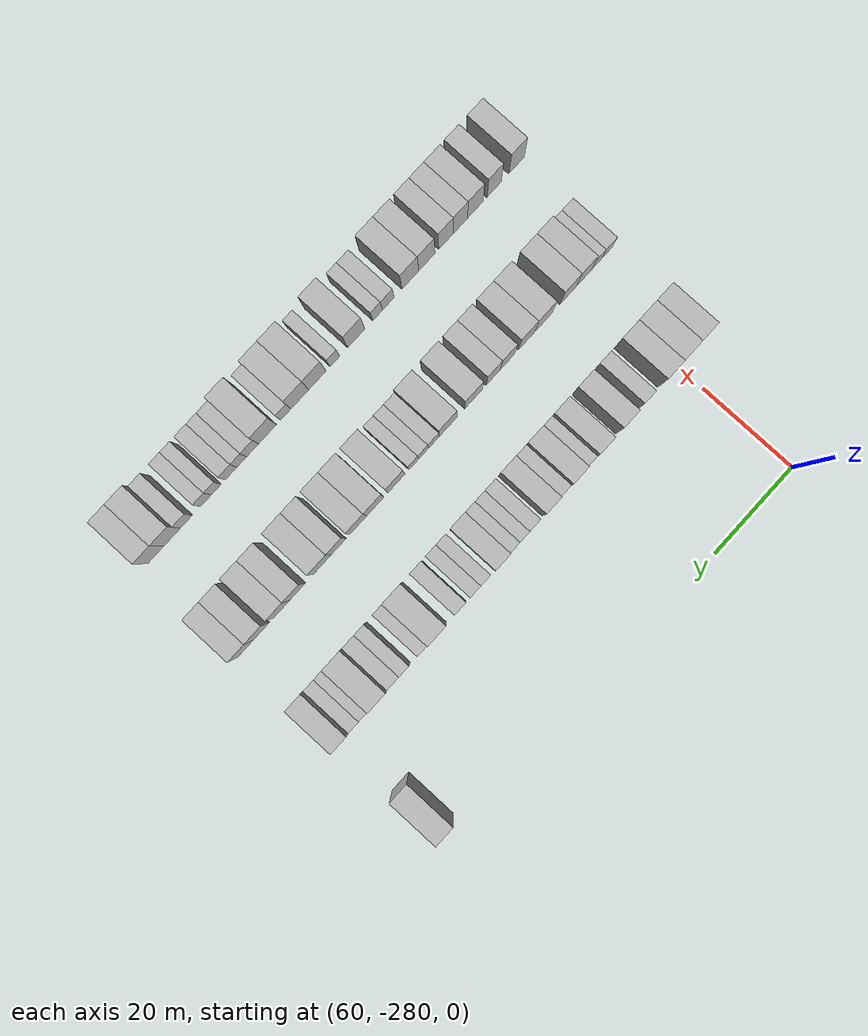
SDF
<sdf version="1.6">
 <world name="default">
  <model name="building_430">
   <static>1</static>
   <pose>69.0000 -196.3556 0 0.000000 0.000000 0.000000</pose>
   <link name="link">
    <pose>0 0 4.50 0 0 0</pose>
    <collision name="collision"><geometry><box><size>10.0000 4.1145 9.0000</size></box></geometry></collision>
    <visual name="visual">
     <cast_shadows>0</cast_shadows>
     <geometry><box><size>10.0000 4.1145 9.0000</size></box></geometry>
     <material>
      <script>
       <uri>model://HANNAS_wall/materials/scripts</uri>
       <uri>model://HANNAS_wall/materials/textures</uri>
       <name>vrc/HANNAS_wall</name>
      </script>
     </material>
    </visual>
   </link>
  </model>
  <model name="building_592">
   <static>1</static>
   <pose>91.0000 -285.4383 0 0.000000 0.000000 0.000000</pose>
   <link name="link">
    <pose>0 0 4.50 0 0 0</pose>
    <collision name="collision"><geometry><box><size>10.0000 4.0246 9.0000</size></box></geometry></collision>
    <visual name="visual">
     <cast_shadows>0</cast_shadows>
     <geometry><box><size>10.0000 4.0246 9.0000</size></box></geometry>
     <material>
      <script>
       <uri>model://HANNAS_wall/materials/scripts</uri>
       <uri>model://HANNAS_wall/materials/textures</uri>
       <name>vrc/HANNAS_wall</name>
      </script>
     </material>
    </visual>
   </link>
  </model>
  <model name="building_593">
   <static>1</static>
   <pose>91.0000 -281.2193 0 0.000000 0.000000 0.000000</pose>
   <link name="link">
    <pose>0 0 4.50 0 0 0</pose>
    <collision name="collision"><geometry><box><size>10.0000 4.4134 9.0000</size></box></geometry></collision>
    <visual name="visual">
     <cast_shadows>0</cast_shadows>
     <geometry><box><size>10.0000 4.4134 9.0000</size></box></geometry>
     <material>
      <script>
       <uri>model://HANNAS_wall/materials/scripts</uri>
       <uri>model://HANNAS_wall/materials/textures</uri>
       <name>vrc/HANNAS_wall</name>
      </script>
     </material>
    </visual>
   </link>
  </model>
  <model name="building_594">
   <static>1</static>
   <pose>91.0000 -276.9305 0 0.000000 0.000000 0.000000</pose>
   <link name="link">
    <pose>0 0 4.50 0 0 0</pose>
    <collision name="collision"><geometry><box><size>10.0000 4.1642 9.0000</size></box></geometry></collision>
    <visual name="visual">
     <cast_shadows>0</cast_shadows>
     <geometry><box><size>10.0000 4.1642 9.0000</size></box></geometry>
     <material>
      <script>
       <uri>model://HANNAS_wall/materials/scripts</uri>
       <uri>model://HANNAS_wall/materials/textures</uri>
       <name>vrc/HANNAS_wall</name>
      </script>
     </material>
    </visual>
   </link>
  </model>
  <model name="building_595">
   <static>1</static>
   <pose>91.0000 -271.4006 0 0.000000 0.000000 0.000000</pose>
   <link name="link">
    <pose>0 0 3.00 0 0 0</pose>
    <collision name="collision"><geometry><box><size>10.0000 2.8958 6.0000</size></box></geometry></collision>
    <visual name="visual">
     <cast_shadows>0</cast_shadows>
     <geometry><box><size>10.0000 2.8958 6.0000</size></box></geometry>
     <material>
      <script>
       <uri>model://HANNAS_wall/materials/scripts</uri>
       <uri>model://HANNAS_wall/materials/textures</uri>
       <name>vrc/HANNAS_wall</name>
      </script>
     </material>
    </visual>
   </link>
  </model>
  <model name="building_596">
   <static>1</static>
   <pose>91.0000 -265.9723 0 0.000000 0.000000 0.000000</pose>
   <link name="link">
    <pose>0 0 4.50 0 0 0</pose>
    <collision name="collision"><geometry><box><size>10.0000 3.9608 9.0000</size></box></geometry></collision>
    <visual name="visual">
     <cast_shadows>0</cast_shadows>
     <geometry><box><size>10.0000 3.9608 9.0000</size></box></geometry>
     <material>
      <script>
       <uri>model://HANNAS_wall/materials/scripts</uri>
       <uri>model://HANNAS_wall/materials/textures</uri>
       <name>vrc/HANNAS_wall</name>
      </script>
     </material>
    </visual>
   </link>
  </model>
  <model name="building_597">
   <static>1</static>
   <pose>91.0000 -260.0724 0 0.000000 0.000000 0.000000</pose>
   <link name="link">
    <pose>0 0 4.50 0 0 0</pose>
    <collision name="collision"><geometry><box><size>10.0000 3.8388 9.0000</size></box></geometry></collision>
    <visual name="visual">
     <cast_shadows>0</cast_shadows>
     <geometry><box><size>10.0000 3.8388 9.0000</size></box></geometry>
     <material>
      <script>
       <uri>model://HANNAS_wall/materials/scripts</uri>
       <uri>model://HANNAS_wall/materials/textures</uri>
       <name>vrc/HANNAS_wall</name>
      </script>
     </material>
    </visual>
   </link>
  </model>
  <model name="building_598">
   <static>1</static>
   <pose>91.0000 -256.8457 0 0.000000 0.000000 0.000000</pose>
   <link name="link">
    <pose>0 0 3.00 0 0 0</pose>
    <collision name="collision"><geometry><box><size>10.0000 2.6148 6.0000</size></box></geometry></collision>
    <visual name="visual">
     <cast_shadows>0</cast_shadows>
     <geometry><box><size>10.0000 2.6148 6.0000</size></box></geometry>
     <material>
      <script>
       <uri>model://HANNAS_wall/materials/scripts</uri>
       <uri>model://HANNAS_wall/materials/textures</uri>
       <name>vrc/HANNAS_wall</name>
      </script>
     </material>
    </visual>
   </link>
  </model>
  <model name="building_599">
   <static>1</static>
   <pose>91.0000 -253.6108 0 0.000000 0.000000 0.000000</pose>
   <link name="link">
    <pose>0 0 4.50 0 0 0</pose>
    <collision name="collision"><geometry><box><size>10.0000 3.8549 9.0000</size></box></geometry></collision>
    <visual name="visual">
     <cast_shadows>0</cast_shadows>
     <geometry><box><size>10.0000 3.8549 9.0000</size></box></geometry>
     <material>
      <script>
       <uri>model://HANNAS_wall/materials/scripts</uri>
       <uri>model://HANNAS_wall/materials/textures</uri>
       <name>vrc/HANNAS_wall</name>
      </script>
     </material>
    </visual>
   </link>
  </model>
  <model name="building_600">
   <static>1</static>
   <pose>91.0000 -250.2678 0 0.000000 0.000000 0.000000</pose>
   <link name="link">
    <pose>0 0 3.00 0 0 0</pose>
    <collision name="collision"><geometry><box><size>10.0000 2.8312 6.0000</size></box></geometry></collision>
    <visual name="visual">
     <cast_shadows>0</cast_shadows>
     <geometry><box><size>10.0000 2.8312 6.0000</size></box></geometry>
     <material>
      <script>
       <uri>model://HANNAS_wall/materials/scripts</uri>
       <uri>model://HANNAS_wall/materials/textures</uri>
       <name>vrc/HANNAS_wall</name>
      </script>
     </material>
    </visual>
   </link>
  </model>
  <model name="building_601">
   <static>1</static>
   <pose>91.0000 -246.9800 0 0.000000 0.000000 0.000000</pose>
   <link name="link">
    <pose>0 0 4.50 0 0 0</pose>
    <collision name="collision"><geometry><box><size>10.0000 3.7443 9.0000</size></box></geometry></collision>
    <visual name="visual">
     <cast_shadows>0</cast_shadows>
     <geometry><box><size>10.0000 3.7443 9.0000</size></box></geometry>
     <material>
      <script>
       <uri>model://HANNAS_wall/materials/scripts</uri>
       <uri>model://HANNAS_wall/materials/textures</uri>
       <name>vrc/HANNAS_wall</name>
      </script>
     </material>
    </visual>
   </link>
  </model>
  <model name="building_602">
   <static>1</static>
   <pose>91.0000 -242.7519 0 0.000000 0.000000 0.000000</pose>
   <link name="link">
    <pose>0 0 3.00 0 0 0</pose>
    <collision name="collision"><geometry><box><size>10.0000 2.7119 6.0000</size></box></geometry></collision>
    <visual name="visual">
     <cast_shadows>0</cast_shadows>
     <geometry><box><size>10.0000 2.7119 6.0000</size></box></geometry>
     <material>
      <script>
       <uri>model://HANNAS_wall/materials/scripts</uri>
       <uri>model://HANNAS_wall/materials/textures</uri>
       <name>vrc/HANNAS_wall</name>
      </script>
     </material>
    </visual>
   </link>
  </model>
  <model name="building_603">
   <static>1</static>
   <pose>91.0000 -240.1879 0 0.000000 0.000000 0.000000</pose>
   <link name="link">
    <pose>0 0 3.00 0 0 0</pose>
    <collision name="collision"><geometry><box><size>10.0000 2.4161 6.0000</size></box></geometry></collision>
    <visual name="visual">
     <cast_shadows>0</cast_shadows>
     <geometry><box><size>10.0000 2.4161 6.0000</size></box></geometry>
     <material>
      <script>
       <uri>model://HANNAS_wall/materials/scripts</uri>
       <uri>model://HANNAS_wall/materials/textures</uri>
       <name>vrc/HANNAS_wall</name>
      </script>
     </material>
    </visual>
   </link>
  </model>
  <model name="building_604">
   <static>1</static>
   <pose>91.0000 -237.7492 0 0.000000 0.000000 0.000000</pose>
   <link name="link">
    <pose>0 0 3.00 0 0 0</pose>
    <collision name="collision"><geometry><box><size>10.0000 2.4612 6.0000</size></box></geometry></collision>
    <visual name="visual">
     <cast_shadows>0</cast_shadows>
     <geometry><box><size>10.0000 2.4612 6.0000</size></box></geometry>
     <material>
      <script>
       <uri>model://HANNAS_wall/materials/scripts</uri>
       <uri>model://HANNAS_wall/materials/textures</uri>
       <name>vrc/HANNAS_wall</name>
      </script>
     </material>
    </visual>
   </link>
  </model>
  <model name="building_605">
   <static>1</static>
   <pose>91.0000 -234.6659 0 0.000000 0.000000 0.000000</pose>
   <link name="link">
    <pose>0 0 4.50 0 0 0</pose>
    <collision name="collision"><geometry><box><size>10.0000 3.7055 9.0000</size></box></geometry></collision>
    <visual name="visual">
     <cast_shadows>0</cast_shadows>
     <geometry><box><size>10.0000 3.7055 9.0000</size></box></geometry>
     <material>
      <script>
       <uri>model://HANNAS_wall/materials/scripts</uri>
       <uri>model://HANNAS_wall/materials/textures</uri>
       <name>vrc/HANNAS_wall</name>
      </script>
     </material>
    </visual>
   </link>
  </model>
  <model name="building_606">
   <static>1</static>
   <pose>91.0000 -230.6035 0 0.000000 0.000000 0.000000</pose>
   <link name="link">
    <pose>0 0 3.00 0 0 0</pose>
    <collision name="collision"><geometry><box><size>10.0000 2.4193 6.0000</size></box></geometry></collision>
    <visual name="visual">
     <cast_shadows>0</cast_shadows>
     <geometry><box><size>10.0000 2.4193 6.0000</size></box></geometry>
     <material>
      <script>
       <uri>model://HANNAS_wall/materials/scripts</uri>
       <uri>model://HANNAS_wall/materials/textures</uri>
       <name>vrc/HANNAS_wall</name>
      </script>
     </material>
    </visual>
   </link>
  </model>
  <model name="building_607">
   <static>1</static>
   <pose>91.0000 -228.1011 0 0.000000 0.000000 0.000000</pose>
   <link name="link">
    <pose>0 0 3.00 0 0 0</pose>
    <collision name="collision"><geometry><box><size>10.0000 2.5855 6.0000</size></box></geometry></collision>
    <visual name="visual">
     <cast_shadows>0</cast_shadows>
     <geometry><box><size>10.0000 2.5855 6.0000</size></box></geometry>
     <material>
      <script>
       <uri>model://HANNAS_wall/materials/scripts</uri>
       <uri>model://HANNAS_wall/materials/textures</uri>
       <name>vrc/HANNAS_wall</name>
      </script>
     </material>
    </visual>
   </link>
  </model>
  <model name="building_608">
   <static>1</static>
   <pose>91.0000 -224.3852 0 0.000000 0.000000 0.000000</pose>
   <link name="link">
    <pose>0 0 3.00 0 0 0</pose>
    <collision name="collision"><geometry><box><size>10.0000 2.8462 6.0000</size></box></geometry></collision>
    <visual name="visual">
     <cast_shadows>0</cast_shadows>
     <geometry><box><size>10.0000 2.8462 6.0000</size></box></geometry>
     <material>
      <script>
       <uri>model://HANNAS_wall/materials/scripts</uri>
       <uri>model://HANNAS_wall/materials/textures</uri>
       <name>vrc/HANNAS_wall</name>
      </script>
     </material>
    </visual>
   </link>
  </model>
  <model name="building_609">
   <static>1</static>
   <pose>91.0000 -218.7257 0 0.000000 0.000000 0.000000</pose>
   <link name="link">
    <pose>0 0 4.50 0 0 0</pose>
    <collision name="collision"><geometry><box><size>10.0000 4.4728 9.0000</size></box></geometry></collision>
    <visual name="visual">
     <cast_shadows>0</cast_shadows>
     <geometry><box><size>10.0000 4.4728 9.0000</size></box></geometry>
     <material>
      <script>
       <uri>model://HANNAS_wall/materials/scripts</uri>
       <uri>model://HANNAS_wall/materials/textures</uri>
       <name>vrc/HANNAS_wall</name>
      </script>
     </material>
    </visual>
   </link>
  </model>
  <model name="building_610">
   <static>1</static>
   <pose>91.0000 -215.2229 0 0.000000 0.000000 0.000000</pose>
   <link name="link">
    <pose>0 0 3.00 0 0 0</pose>
    <collision name="collision"><geometry><box><size>10.0000 2.5330 6.0000</size></box></geometry></collision>
    <visual name="visual">
     <cast_shadows>0</cast_shadows>
     <geometry><box><size>10.0000 2.5330 6.0000</size></box></geometry>
     <material>
      <script>
       <uri>model://HANNAS_wall/materials/scripts</uri>
       <uri>model://HANNAS_wall/materials/textures</uri>
       <name>vrc/HANNAS_wall</name>
      </script>
     </material>
    </visual>
   </link>
  </model>
  <model name="building_611">
   <static>1</static>
   <pose>91.0000 -210.7410 0 0.000000 0.000000 0.000000</pose>
   <link name="link">
    <pose>0 0 3.00 0 0 0</pose>
    <collision name="collision"><geometry><box><size>10.0000 2.4307 6.0000</size></box></geometry></collision>
    <visual name="visual">
     <cast_shadows>0</cast_shadows>
     <geometry><box><size>10.0000 2.4307 6.0000</size></box></geometry>
     <material>
      <script>
       <uri>model://HANNAS_wall/materials/scripts</uri>
       <uri>model://HANNAS_wall/materials/textures</uri>
       <name>vrc/HANNAS_wall</name>
      </script>
     </material>
    </visual>
   </link>
  </model>
  <model name="building_612">
   <static>1</static>
   <pose>91.0000 -208.0673 0 0.000000 0.000000 0.000000</pose>
   <link name="link">
    <pose>0 0 3.00 0 0 0</pose>
    <collision name="collision"><geometry><box><size>10.0000 2.9166 6.0000</size></box></geometry></collision>
    <visual name="visual">
     <cast_shadows>0</cast_shadows>
     <geometry><box><size>10.0000 2.9166 6.0000</size></box></geometry>
     <material>
      <script>
       <uri>model://HANNAS_wall/materials/scripts</uri>
       <uri>model://HANNAS_wall/materials/textures</uri>
       <name>vrc/HANNAS_wall</name>
      </script>
     </material>
    </visual>
   </link>
  </model>
  <model name="building_613">
   <static>1</static>
   <pose>91.0000 -204.4400 0 0.000000 0.000000 0.000000</pose>
   <link name="link">
    <pose>0 0 4.50 0 0 0</pose>
    <collision name="collision"><geometry><box><size>10.0000 4.3382 9.0000</size></box></geometry></collision>
    <visual name="visual">
     <cast_shadows>0</cast_shadows>
     <geometry><box><size>10.0000 4.3382 9.0000</size></box></geometry>
     <material>
      <script>
       <uri>model://HANNAS_wall/materials/scripts</uri>
       <uri>model://HANNAS_wall/materials/textures</uri>
       <name>vrc/HANNAS_wall</name>
      </script>
     </material>
    </visual>
   </link>
  </model>
  <model name="building_614">
   <static>1</static>
   <pose>91.0000 -201.0622 0 0.000000 0.000000 0.000000</pose>
   <link name="link">
    <pose>0 0 3.00 0 0 0</pose>
    <collision name="collision"><geometry><box><size>10.0000 2.4174 6.0000</size></box></geometry></collision>
    <visual name="visual">
     <cast_shadows>0</cast_shadows>
     <geometry><box><size>10.0000 2.4174 6.0000</size></box></geometry>
     <material>
      <script>
       <uri>model://HANNAS_wall/materials/scripts</uri>
       <uri>model://HANNAS_wall/materials/textures</uri>
       <name>vrc/HANNAS_wall</name>
      </script>
     </material>
    </visual>
   </link>
  </model>
  <model name="building_615">
   <static>1</static>
   <pose>91.0000 -198.6126 0 0.000000 0.000000 0.000000</pose>
   <link name="link">
    <pose>0 0 3.00 0 0 0</pose>
    <collision name="collision"><geometry><box><size>10.0000 2.4817 6.0000</size></box></geometry></collision>
    <visual name="visual">
     <cast_shadows>0</cast_shadows>
     <geometry><box><size>10.0000 2.4817 6.0000</size></box></geometry>
     <material>
      <script>
       <uri>model://HANNAS_wall/materials/scripts</uri>
       <uri>model://HANNAS_wall/materials/textures</uri>
       <name>vrc/HANNAS_wall</name>
      </script>
     </material>
    </visual>
   </link>
  </model>
  <model name="building_616">
   <static>1</static>
   <pose>91.0000 -195.5010 0 0.000000 0.000000 0.000000</pose>
   <link name="link">
    <pose>0 0 4.50 0 0 0</pose>
    <collision name="collision"><geometry><box><size>10.0000 3.7416 9.0000</size></box></geometry></collision>
    <visual name="visual">
     <cast_shadows>0</cast_shadows>
     <geometry><box><size>10.0000 3.7416 9.0000</size></box></geometry>
     <material>
      <script>
       <uri>model://HANNAS_wall/materials/scripts</uri>
       <uri>model://HANNAS_wall/materials/textures</uri>
       <name>vrc/HANNAS_wall</name>
      </script>
     </material>
    </visual>
   </link>
  </model>
  <model name="building_781">
   <static>1</static>
   <pose>113.0000 -286.4823 0 0.000000 0.000000 0.000000</pose>
   <link name="link">
    <pose>0 0 3.00 0 0 0</pose>
    <collision name="collision"><geometry><box><size>10.0000 2.8330 6.0000</size></box></geometry></collision>
    <visual name="visual">
     <cast_shadows>0</cast_shadows>
     <geometry><box><size>10.0000 2.8330 6.0000</size></box></geometry>
     <material>
      <script>
       <uri>model://HANNAS_wall/materials/scripts</uri>
       <uri>model://HANNAS_wall/materials/textures</uri>
       <name>vrc/HANNAS_wall</name>
      </script>
     </material>
    </visual>
   </link>
  </model>
  <model name="building_782">
   <static>1</static>
   <pose>113.0000 -283.7589 0 0.000000 0.000000 0.000000</pose>
   <link name="link">
    <pose>0 0 3.00 0 0 0</pose>
    <collision name="collision"><geometry><box><size>10.0000 2.6138 6.0000</size></box></geometry></collision>
    <visual name="visual">
     <cast_shadows>0</cast_shadows>
     <geometry><box><size>10.0000 2.6138 6.0000</size></box></geometry>
     <material>
      <script>
       <uri>model://HANNAS_wall/materials/scripts</uri>
       <uri>model://HANNAS_wall/materials/textures</uri>
       <name>vrc/HANNAS_wall</name>
      </script>
     </material>
    </visual>
   </link>
  </model>
  <model name="building_783">
   <static>1</static>
   <pose>113.0000 -280.4648 0 0.000000 0.000000 0.000000</pose>
   <link name="link">
    <pose>0 0 4.50 0 0 0</pose>
    <collision name="collision"><geometry><box><size>10.0000 3.9744 9.0000</size></box></geometry></collision>
    <visual name="visual">
     <cast_shadows>0</cast_shadows>
     <geometry><box><size>10.0000 3.9744 9.0000</size></box></geometry>
     <material>
      <script>
       <uri>model://HANNAS_wall/materials/scripts</uri>
       <uri>model://HANNAS_wall/materials/textures</uri>
       <name>vrc/HANNAS_wall</name>
      </script>
     </material>
    </visual>
   </link>
  </model>
  <model name="building_784">
   <static>1</static>
   <pose>113.0000 -276.3611 0 0.000000 0.000000 0.000000</pose>
   <link name="link">
    <pose>0 0 4.50 0 0 0</pose>
    <collision name="collision"><geometry><box><size>10.0000 4.2330 9.0000</size></box></geometry></collision>
    <visual name="visual">
     <cast_shadows>0</cast_shadows>
     <geometry><box><size>10.0000 4.2330 9.0000</size></box></geometry>
     <material>
      <script>
       <uri>model://HANNAS_wall/materials/scripts</uri>
       <uri>model://HANNAS_wall/materials/textures</uri>
       <name>vrc/HANNAS_wall</name>
      </script>
     </material>
    </visual>
   </link>
  </model>
  <model name="building_785">
   <static>1</static>
   <pose>113.0000 -270.0131 0 0.000000 0.000000 0.000000</pose>
   <link name="link">
    <pose>0 0 4.50 0 0 0</pose>
    <collision name="collision"><geometry><box><size>10.0000 4.4631 9.0000</size></box></geometry></collision>
    <visual name="visual">
     <cast_shadows>0</cast_shadows>
     <geometry><box><size>10.0000 4.4631 9.0000</size></box></geometry>
     <material>
      <script>
       <uri>model://HANNAS_wall/materials/scripts</uri>
       <uri>model://HANNAS_wall/materials/textures</uri>
       <name>vrc/HANNAS_wall</name>
      </script>
     </material>
    </visual>
   </link>
  </model>
  <model name="building_786">
   <static>1</static>
   <pose>113.0000 -265.6636 0 0.000000 0.000000 0.000000</pose>
   <link name="link">
    <pose>0 0 4.50 0 0 0</pose>
    <collision name="collision"><geometry><box><size>10.0000 4.2358 9.0000</size></box></geometry></collision>
    <visual name="visual">
     <cast_shadows>0</cast_shadows>
     <geometry><box><size>10.0000 4.2358 9.0000</size></box></geometry>
     <material>
      <script>
       <uri>model://HANNAS_wall/materials/scripts</uri>
       <uri>model://HANNAS_wall/materials/textures</uri>
       <name>vrc/HANNAS_wall</name>
      </script>
     </material>
    </visual>
   </link>
  </model>
  <model name="building_787">
   <static>1</static>
   <pose>113.0000 -260.7147 0 0.000000 0.000000 0.000000</pose>
   <link name="link">
    <pose>0 0 4.50 0 0 0</pose>
    <collision name="collision"><geometry><box><size>10.0000 3.6620 9.0000</size></box></geometry></collision>
    <visual name="visual">
     <cast_shadows>0</cast_shadows>
     <geometry><box><size>10.0000 3.6620 9.0000</size></box></geometry>
     <material>
      <script>
       <uri>model://HANNAS_wall/materials/scripts</uri>
       <uri>model://HANNAS_wall/materials/textures</uri>
       <name>vrc/HANNAS_wall</name>
      </script>
     </material>
    </visual>
   </link>
  </model>
  <model name="building_788">
   <static>1</static>
   <pose>113.0000 -257.0809 0 0.000000 0.000000 0.000000</pose>
   <link name="link">
    <pose>0 0 4.50 0 0 0</pose>
    <collision name="collision"><geometry><box><size>10.0000 3.6057 9.0000</size></box></geometry></collision>
    <visual name="visual">
     <cast_shadows>0</cast_shadows>
     <geometry><box><size>10.0000 3.6057 9.0000</size></box></geometry>
     <material>
      <script>
       <uri>model://HANNAS_wall/materials/scripts</uri>
       <uri>model://HANNAS_wall/materials/textures</uri>
       <name>vrc/HANNAS_wall</name>
      </script>
     </material>
    </visual>
   </link>
  </model>
  <model name="building_789">
   <static>1</static>
   <pose>113.0000 -252.0530 0 0.000000 0.000000 0.000000</pose>
   <link name="link">
    <pose>0 0 4.50 0 0 0</pose>
    <collision name="collision"><geometry><box><size>10.0000 4.4502 9.0000</size></box></geometry></collision>
    <visual name="visual">
     <cast_shadows>0</cast_shadows>
     <geometry><box><size>10.0000 4.4502 9.0000</size></box></geometry>
     <material>
      <script>
       <uri>model://HANNAS_wall/materials/scripts</uri>
       <uri>model://HANNAS_wall/materials/textures</uri>
       <name>vrc/HANNAS_wall</name>
      </script>
     </material>
    </visual>
   </link>
  </model>
  <model name="building_790">
   <static>1</static>
   <pose>113.0000 -245.5877 0 0.000000 0.000000 0.000000</pose>
   <link name="link">
    <pose>0 0 4.50 0 0 0</pose>
    <collision name="collision"><geometry><box><size>10.0000 4.4804 9.0000</size></box></geometry></collision>
    <visual name="visual">
     <cast_shadows>0</cast_shadows>
     <geometry><box><size>10.0000 4.4804 9.0000</size></box></geometry>
     <material>
      <script>
       <uri>model://HANNAS_wall/materials/scripts</uri>
       <uri>model://HANNAS_wall/materials/textures</uri>
       <name>vrc/HANNAS_wall</name>
      </script>
     </material>
    </visual>
   </link>
  </model>
  <model name="building_791">
   <static>1</static>
   <pose>113.0000 -242.0009 0 0.000000 0.000000 0.000000</pose>
   <link name="link">
    <pose>0 0 3.00 0 0 0</pose>
    <collision name="collision"><geometry><box><size>10.0000 2.6932 6.0000</size></box></geometry></collision>
    <visual name="visual">
     <cast_shadows>0</cast_shadows>
     <geometry><box><size>10.0000 2.6932 6.0000</size></box></geometry>
     <material>
      <script>
       <uri>model://HANNAS_wall/materials/scripts</uri>
       <uri>model://HANNAS_wall/materials/textures</uri>
       <name>vrc/HANNAS_wall</name>
      </script>
     </material>
    </visual>
   </link>
  </model>
  <model name="building_792">
   <static>1</static>
   <pose>113.0000 -239.4150 0 0.000000 0.000000 0.000000</pose>
   <link name="link">
    <pose>0 0 3.00 0 0 0</pose>
    <collision name="collision"><geometry><box><size>10.0000 2.4786 6.0000</size></box></geometry></collision>
    <visual name="visual">
     <cast_shadows>0</cast_shadows>
     <geometry><box><size>10.0000 2.4786 6.0000</size></box></geometry>
     <material>
      <script>
       <uri>model://HANNAS_wall/materials/scripts</uri>
       <uri>model://HANNAS_wall/materials/textures</uri>
       <name>vrc/HANNAS_wall</name>
      </script>
     </material>
    </visual>
   </link>
  </model>
  <model name="building_793">
   <static>1</static>
   <pose>113.0000 -236.9357 0 0.000000 0.000000 0.000000</pose>
   <link name="link">
    <pose>0 0 3.00 0 0 0</pose>
    <collision name="collision"><geometry><box><size>10.0000 2.4801 6.0000</size></box></geometry></collision>
    <visual name="visual">
     <cast_shadows>0</cast_shadows>
     <geometry><box><size>10.0000 2.4801 6.0000</size></box></geometry>
     <material>
      <script>
       <uri>model://HANNAS_wall/materials/scripts</uri>
       <uri>model://HANNAS_wall/materials/textures</uri>
       <name>vrc/HANNAS_wall</name>
      </script>
     </material>
    </visual>
   </link>
  </model>
  <model name="building_794">
   <static>1</static>
   <pose>113.0000 -232.5691 0 0.000000 0.000000 0.000000</pose>
   <link name="link">
    <pose>0 0 4.50 0 0 0</pose>
    <collision name="collision"><geometry><box><size>10.0000 4.2532 9.0000</size></box></geometry></collision>
    <visual name="visual">
     <cast_shadows>0</cast_shadows>
     <geometry><box><size>10.0000 4.2532 9.0000</size></box></geometry>
     <material>
      <script>
       <uri>model://HANNAS_wall/materials/scripts</uri>
       <uri>model://HANNAS_wall/materials/textures</uri>
       <name>vrc/HANNAS_wall</name>
      </script>
     </material>
    </visual>
   </link>
  </model>
  <model name="building_795">
   <static>1</static>
   <pose>113.0000 -227.3130 0 0.000000 0.000000 0.000000</pose>
   <link name="link">
    <pose>0 0 4.50 0 0 0</pose>
    <collision name="collision"><geometry><box><size>10.0000 4.2589 9.0000</size></box></geometry></collision>
    <visual name="visual">
     <cast_shadows>0</cast_shadows>
     <geometry><box><size>10.0000 4.2589 9.0000</size></box></geometry>
     <material>
      <script>
       <uri>model://HANNAS_wall/materials/scripts</uri>
       <uri>model://HANNAS_wall/materials/textures</uri>
       <name>vrc/HANNAS_wall</name>
      </script>
     </material>
    </visual>
   </link>
  </model>
  <model name="building_796">
   <static>1</static>
   <pose>113.0000 -223.0621 0 0.000000 0.000000 0.000000</pose>
   <link name="link">
    <pose>0 0 4.50 0 0 0</pose>
    <collision name="collision"><geometry><box><size>10.0000 4.2431 9.0000</size></box></geometry></collision>
    <visual name="visual">
     <cast_shadows>0</cast_shadows>
     <geometry><box><size>10.0000 4.2431 9.0000</size></box></geometry>
     <material>
      <script>
       <uri>model://HANNAS_wall/materials/scripts</uri>
       <uri>model://HANNAS_wall/materials/textures</uri>
       <name>vrc/HANNAS_wall</name>
      </script>
     </material>
    </visual>
   </link>
  </model>
  <model name="building_797">
   <static>1</static>
   <pose>113.0000 -218.1097 0 0.000000 0.000000 0.000000</pose>
   <link name="link">
    <pose>0 0 4.50 0 0 0</pose>
    <collision name="collision"><geometry><box><size>10.0000 3.6617 9.0000</size></box></geometry></collision>
    <visual name="visual">
     <cast_shadows>0</cast_shadows>
     <geometry><box><size>10.0000 3.6617 9.0000</size></box></geometry>
     <material>
      <script>
       <uri>model://HANNAS_wall/materials/scripts</uri>
       <uri>model://HANNAS_wall/materials/textures</uri>
       <name>vrc/HANNAS_wall</name>
      </script>
     </material>
    </visual>
   </link>
  </model>
  <model name="building_798">
   <static>1</static>
   <pose>113.0000 -214.0604 0 0.000000 0.000000 0.000000</pose>
   <link name="link">
    <pose>0 0 4.50 0 0 0</pose>
    <collision name="collision"><geometry><box><size>10.0000 4.4369 9.0000</size></box></geometry></collision>
    <visual name="visual">
     <cast_shadows>0</cast_shadows>
     <geometry><box><size>10.0000 4.4369 9.0000</size></box></geometry>
     <material>
      <script>
       <uri>model://HANNAS_wall/materials/scripts</uri>
       <uri>model://HANNAS_wall/materials/textures</uri>
       <name>vrc/HANNAS_wall</name>
      </script>
     </material>
    </visual>
   </link>
  </model>
  <model name="building_799">
   <static>1</static>
   <pose>113.0000 -207.8980 0 0.000000 0.000000 0.000000</pose>
   <link name="link">
    <pose>0 0 4.50 0 0 0</pose>
    <collision name="collision"><geometry><box><size>10.0000 3.8881 9.0000</size></box></geometry></collision>
    <visual name="visual">
     <cast_shadows>0</cast_shadows>
     <geometry><box><size>10.0000 3.8881 9.0000</size></box></geometry>
     <material>
      <script>
       <uri>model://HANNAS_wall/materials/scripts</uri>
       <uri>model://HANNAS_wall/materials/textures</uri>
       <name>vrc/HANNAS_wall</name>
      </script>
     </material>
    </visual>
   </link>
  </model>
  <model name="building_800">
   <static>1</static>
   <pose>113.0000 -203.9527 0 0.000000 0.000000 0.000000</pose>
   <link name="link">
    <pose>0 0 4.50 0 0 0</pose>
    <collision name="collision"><geometry><box><size>10.0000 4.0026 9.0000</size></box></geometry></collision>
    <visual name="visual">
     <cast_shadows>0</cast_shadows>
     <geometry><box><size>10.0000 4.0026 9.0000</size></box></geometry>
     <material>
      <script>
       <uri>model://HANNAS_wall/materials/scripts</uri>
       <uri>model://HANNAS_wall/materials/textures</uri>
       <name>vrc/HANNAS_wall</name>
      </script>
     </material>
    </visual>
   </link>
  </model>
  <model name="building_801">
   <static>1</static>
   <pose>113.0000 -198.9844 0 0.000000 0.000000 0.000000</pose>
   <link name="link">
    <pose>0 0 4.50 0 0 0</pose>
    <collision name="collision"><geometry><box><size>10.0000 3.9340 9.0000</size></box></geometry></collision>
    <visual name="visual">
     <cast_shadows>0</cast_shadows>
     <geometry><box><size>10.0000 3.9340 9.0000</size></box></geometry>
     <material>
      <script>
       <uri>model://HANNAS_wall/materials/scripts</uri>
       <uri>model://HANNAS_wall/materials/textures</uri>
       <name>vrc/HANNAS_wall</name>
      </script>
     </material>
    </visual>
   </link>
  </model>
  <model name="building_802">
   <static>1</static>
   <pose>113.0000 -195.0847 0 0.000000 0.000000 0.000000</pose>
   <link name="link">
    <pose>0 0 4.50 0 0 0</pose>
    <collision name="collision"><geometry><box><size>10.0000 3.8653 9.0000</size></box></geometry></collision>
    <visual name="visual">
     <cast_shadows>0</cast_shadows>
     <geometry><box><size>10.0000 3.8653 9.0000</size></box></geometry>
     <material>
      <script>
       <uri>model://HANNAS_wall/materials/scripts</uri>
       <uri>model://HANNAS_wall/materials/textures</uri>
       <name>vrc/HANNAS_wall</name>
      </script>
     </material>
    </visual>
   </link>
  </model>
  <model name="building_967">
   <static>1</static>
   <pose>135.0000 -287.5159 0 0.000000 0.000000 0.000000</pose>
   <link name="link">
    <pose>0 0 4.50 0 0 0</pose>
    <collision name="collision"><geometry><box><size>10.0000 3.9827 9.0000</size></box></geometry></collision>
    <visual name="visual">
     <cast_shadows>0</cast_shadows>
     <geometry><box><size>10.0000 3.9827 9.0000</size></box></geometry>
     <material>
      <script>
       <uri>model://HANNAS_wall/materials/scripts</uri>
       <uri>model://HANNAS_wall/materials/textures</uri>
       <name>vrc/HANNAS_wall</name>
      </script>
     </material>
    </visual>
   </link>
  </model>
  <model name="building_968">
   <static>1</static>
   <pose>135.0000 -281.6869 0 0.000000 0.000000 0.000000</pose>
   <link name="link">
    <pose>0 0 4.50 0 0 0</pose>
    <collision name="collision"><geometry><box><size>10.0000 3.6753 9.0000</size></box></geometry></collision>
    <visual name="visual">
     <cast_shadows>0</cast_shadows>
     <geometry><box><size>10.0000 3.6753 9.0000</size></box></geometry>
     <material>
      <script>
       <uri>model://HANNAS_wall/materials/scripts</uri>
       <uri>model://HANNAS_wall/materials/textures</uri>
       <name>vrc/HANNAS_wall</name>
      </script>
     </material>
    </visual>
   </link>
  </model>
  <model name="building_969">
   <static>1</static>
   <pose>135.0000 -276.8265 0 0.000000 0.000000 0.000000</pose>
   <link name="link">
    <pose>0 0 4.50 0 0 0</pose>
    <collision name="collision"><geometry><box><size>10.0000 4.0454 9.0000</size></box></geometry></collision>
    <visual name="visual">
     <cast_shadows>0</cast_shadows>
     <geometry><box><size>10.0000 4.0454 9.0000</size></box></geometry>
     <material>
      <script>
       <uri>model://HANNAS_wall/materials/scripts</uri>
       <uri>model://HANNAS_wall/materials/textures</uri>
       <name>vrc/HANNAS_wall</name>
      </script>
     </material>
    </visual>
   </link>
  </model>
  <model name="building_970">
   <static>1</static>
   <pose>135.0000 -272.9755 0 0.000000 0.000000 0.000000</pose>
   <link name="link">
    <pose>0 0 4.50 0 0 0</pose>
    <collision name="collision"><geometry><box><size>10.0000 3.6566 9.0000</size></box></geometry></collision>
    <visual name="visual">
     <cast_shadows>0</cast_shadows>
     <geometry><box><size>10.0000 3.6566 9.0000</size></box></geometry>
     <material>
      <script>
       <uri>model://HANNAS_wall/materials/scripts</uri>
       <uri>model://HANNAS_wall/materials/textures</uri>
       <name>vrc/HANNAS_wall</name>
      </script>
     </material>
    </visual>
   </link>
  </model>
  <model name="building_971">
   <static>1</static>
   <pose>135.0000 -269.2741 0 0.000000 0.000000 0.000000</pose>
   <link name="link">
    <pose>0 0 4.50 0 0 0</pose>
    <collision name="collision"><geometry><box><size>10.0000 3.7463 9.0000</size></box></geometry></collision>
    <visual name="visual">
     <cast_shadows>0</cast_shadows>
     <geometry><box><size>10.0000 3.7463 9.0000</size></box></geometry>
     <material>
      <script>
       <uri>model://HANNAS_wall/materials/scripts</uri>
       <uri>model://HANNAS_wall/materials/textures</uri>
       <name>vrc/HANNAS_wall</name>
      </script>
     </material>
    </visual>
   </link>
  </model>
  <model name="building_972">
   <static>1</static>
   <pose>135.0000 -264.3417 0 0.000000 0.000000 0.000000</pose>
   <link name="link">
    <pose>0 0 4.50 0 0 0</pose>
    <collision name="collision"><geometry><box><size>10.0000 4.1185 9.0000</size></box></geometry></collision>
    <visual name="visual">
     <cast_shadows>0</cast_shadows>
     <geometry><box><size>10.0000 4.1185 9.0000</size></box></geometry>
     <material>
      <script>
       <uri>model://HANNAS_wall/materials/scripts</uri>
       <uri>model://HANNAS_wall/materials/textures</uri>
       <name>vrc/HANNAS_wall</name>
      </script>
     </material>
    </visual>
   </link>
  </model>
  <model name="building_973">
   <static>1</static>
   <pose>135.0000 -260.1266 0 0.000000 0.000000 0.000000</pose>
   <link name="link">
    <pose>0 0 4.50 0 0 0</pose>
    <collision name="collision"><geometry><box><size>10.0000 4.3119 9.0000</size></box></geometry></collision>
    <visual name="visual">
     <cast_shadows>0</cast_shadows>
     <geometry><box><size>10.0000 4.3119 9.0000</size></box></geometry>
     <material>
      <script>
       <uri>model://HANNAS_wall/materials/scripts</uri>
       <uri>model://HANNAS_wall/materials/textures</uri>
       <name>vrc/HANNAS_wall</name>
      </script>
     </material>
    </visual>
   </link>
  </model>
  <model name="building_974">
   <static>1</static>
   <pose>135.0000 -254.4883 0 0.000000 0.000000 0.000000</pose>
   <link name="link">
    <pose>0 0 3.00 0 0 0</pose>
    <collision name="collision"><geometry><box><size>10.0000 2.9647 6.0000</size></box></geometry></collision>
    <visual name="visual">
     <cast_shadows>0</cast_shadows>
     <geometry><box><size>10.0000 2.9647 6.0000</size></box></geometry>
     <material>
      <script>
       <uri>model://HANNAS_wall/materials/scripts</uri>
       <uri>model://HANNAS_wall/materials/textures</uri>
       <name>vrc/HANNAS_wall</name>
      </script>
     </material>
    </visual>
   </link>
  </model>
  <model name="building_975">
   <static>1</static>
   <pose>135.0000 -251.7587 0 0.000000 0.000000 0.000000</pose>
   <link name="link">
    <pose>0 0 3.00 0 0 0</pose>
    <collision name="collision"><geometry><box><size>10.0000 2.4944 6.0000</size></box></geometry></collision>
    <visual name="visual">
     <cast_shadows>0</cast_shadows>
     <geometry><box><size>10.0000 2.4944 6.0000</size></box></geometry>
     <material>
      <script>
       <uri>model://HANNAS_wall/materials/scripts</uri>
       <uri>model://HANNAS_wall/materials/textures</uri>
       <name>vrc/HANNAS_wall</name>
      </script>
     </material>
    </visual>
   </link>
  </model>
  <model name="building_976">
   <static>1</static>
   <pose>135.0000 -246.3281 0 0.000000 0.000000 0.000000</pose>
   <link name="link">
    <pose>0 0 4.50 0 0 0</pose>
    <collision name="collision"><geometry><box><size>10.0000 4.3668 9.0000</size></box></geometry></collision>
    <visual name="visual">
     <cast_shadows>0</cast_shadows>
     <geometry><box><size>10.0000 4.3668 9.0000</size></box></geometry>
     <material>
      <script>
       <uri>model://HANNAS_wall/materials/scripts</uri>
       <uri>model://HANNAS_wall/materials/textures</uri>
       <name>vrc/HANNAS_wall</name>
      </script>
     </material>
    </visual>
   </link>
  </model>
  <model name="building_977">
   <static>1</static>
   <pose>135.0000 -240.9260 0 0.000000 0.000000 0.000000</pose>
   <link name="link">
    <pose>0 0 3.00 0 0 0</pose>
    <collision name="collision"><geometry><box><size>10.0000 2.4374 6.0000</size></box></geometry></collision>
    <visual name="visual">
     <cast_shadows>0</cast_shadows>
     <geometry><box><size>10.0000 2.4374 6.0000</size></box></geometry>
     <material>
      <script>
       <uri>model://HANNAS_wall/materials/scripts</uri>
       <uri>model://HANNAS_wall/materials/textures</uri>
       <name>vrc/HANNAS_wall</name>
      </script>
     </material>
    </visual>
   </link>
  </model>
  <model name="building_978">
   <static>1</static>
   <pose>135.0000 -236.4985 0 0.000000 0.000000 0.000000</pose>
   <link name="link">
    <pose>0 0 4.50 0 0 0</pose>
    <collision name="collision"><geometry><box><size>10.0000 4.4175 9.0000</size></box></geometry></collision>
    <visual name="visual">
     <cast_shadows>0</cast_shadows>
     <geometry><box><size>10.0000 4.4175 9.0000</size></box></geometry>
     <material>
      <script>
       <uri>model://HANNAS_wall/materials/scripts</uri>
       <uri>model://HANNAS_wall/materials/textures</uri>
       <name>vrc/HANNAS_wall</name>
      </script>
     </material>
    </visual>
   </link>
  </model>
  <model name="building_979">
   <static>1</static>
   <pose>135.0000 -232.0619 0 0.000000 0.000000 0.000000</pose>
   <link name="link">
    <pose>0 0 4.50 0 0 0</pose>
    <collision name="collision"><geometry><box><size>10.0000 4.4558 9.0000</size></box></geometry></collision>
    <visual name="visual">
     <cast_shadows>0</cast_shadows>
     <geometry><box><size>10.0000 4.4558 9.0000</size></box></geometry>
     <material>
      <script>
       <uri>model://HANNAS_wall/materials/scripts</uri>
       <uri>model://HANNAS_wall/materials/textures</uri>
       <name>vrc/HANNAS_wall</name>
      </script>
     </material>
    </visual>
   </link>
  </model>
  <model name="building_980">
   <static>1</static>
   <pose>135.0000 -228.5252 0 0.000000 0.000000 0.000000</pose>
   <link name="link">
    <pose>0 0 3.00 0 0 0</pose>
    <collision name="collision"><geometry><box><size>10.0000 2.6177 6.0000</size></box></geometry></collision>
    <visual name="visual">
     <cast_shadows>0</cast_shadows>
     <geometry><box><size>10.0000 2.6177 6.0000</size></box></geometry>
     <material>
      <script>
       <uri>model://HANNAS_wall/materials/scripts</uri>
       <uri>model://HANNAS_wall/materials/textures</uri>
       <name>vrc/HANNAS_wall</name>
      </script>
     </material>
    </visual>
   </link>
  </model>
  <model name="building_981">
   <static>1</static>
   <pose>135.0000 -223.9794 0 0.000000 0.000000 0.000000</pose>
   <link name="link">
    <pose>0 0 4.50 0 0 0</pose>
    <collision name="collision"><geometry><box><size>10.0000 4.4739 9.0000</size></box></geometry></collision>
    <visual name="visual">
     <cast_shadows>0</cast_shadows>
     <geometry><box><size>10.0000 4.4739 9.0000</size></box></geometry>
     <material>
      <script>
       <uri>model://HANNAS_wall/materials/scripts</uri>
       <uri>model://HANNAS_wall/materials/textures</uri>
       <name>vrc/HANNAS_wall</name>
      </script>
     </material>
    </visual>
   </link>
  </model>
  <model name="building_982">
   <static>1</static>
   <pose>135.0000 -220.2425 0 0.000000 0.000000 0.000000</pose>
   <link name="link">
    <pose>0 0 3.00 0 0 0</pose>
    <collision name="collision"><geometry><box><size>10.0000 2.9998 6.0000</size></box></geometry></collision>
    <visual name="visual">
     <cast_shadows>0</cast_shadows>
     <geometry><box><size>10.0000 2.9998 6.0000</size></box></geometry>
     <material>
      <script>
       <uri>model://HANNAS_wall/materials/scripts</uri>
       <uri>model://HANNAS_wall/materials/textures</uri>
       <name>vrc/HANNAS_wall</name>
      </script>
     </material>
    </visual>
   </link>
  </model>
  <model name="building_983">
   <static>1</static>
   <pose>135.0000 -217.5316 0 0.000000 0.000000 0.000000</pose>
   <link name="link">
    <pose>0 0 3.00 0 0 0</pose>
    <collision name="collision"><geometry><box><size>10.0000 2.4222 6.0000</size></box></geometry></collision>
    <visual name="visual">
     <cast_shadows>0</cast_shadows>
     <geometry><box><size>10.0000 2.4222 6.0000</size></box></geometry>
     <material>
      <script>
       <uri>model://HANNAS_wall/materials/scripts</uri>
       <uri>model://HANNAS_wall/materials/textures</uri>
       <name>vrc/HANNAS_wall</name>
      </script>
     </material>
    </visual>
   </link>
  </model>
  <model name="building_984">
   <static>1</static>
   <pose>135.0000 -214.8716 0 0.000000 0.000000 0.000000</pose>
   <link name="link">
    <pose>0 0 3.00 0 0 0</pose>
    <collision name="collision"><geometry><box><size>10.0000 2.8977 6.0000</size></box></geometry></collision>
    <visual name="visual">
     <cast_shadows>0</cast_shadows>
     <geometry><box><size>10.0000 2.8977 6.0000</size></box></geometry>
     <material>
      <script>
       <uri>model://HANNAS_wall/materials/scripts</uri>
       <uri>model://HANNAS_wall/materials/textures</uri>
       <name>vrc/HANNAS_wall</name>
      </script>
     </material>
    </visual>
   </link>
  </model>
  <model name="building_985">
   <static>1</static>
   <pose>135.0000 -211.1897 0 0.000000 0.000000 0.000000</pose>
   <link name="link">
    <pose>0 0 3.00 0 0 0</pose>
    <collision name="collision"><geometry><box><size>10.0000 2.4663 6.0000</size></box></geometry></collision>
    <visual name="visual">
     <cast_shadows>0</cast_shadows>
     <geometry><box><size>10.0000 2.4663 6.0000</size></box></geometry>
     <material>
      <script>
       <uri>model://HANNAS_wall/materials/scripts</uri>
       <uri>model://HANNAS_wall/materials/textures</uri>
       <name>vrc/HANNAS_wall</name>
      </script>
     </material>
    </visual>
   </link>
  </model>
  <model name="building_986">
   <static>1</static>
   <pose>135.0000 -208.6306 0 0.000000 0.000000 0.000000</pose>
   <link name="link">
    <pose>0 0 3.00 0 0 0</pose>
    <collision name="collision"><geometry><box><size>10.0000 2.6519 6.0000</size></box></geometry></collision>
    <visual name="visual">
     <cast_shadows>0</cast_shadows>
     <geometry><box><size>10.0000 2.6519 6.0000</size></box></geometry>
     <material>
      <script>
       <uri>model://HANNAS_wall/materials/scripts</uri>
       <uri>model://HANNAS_wall/materials/textures</uri>
       <name>vrc/HANNAS_wall</name>
      </script>
     </material>
    </visual>
   </link>
  </model>
  <model name="building_987">
   <static>1</static>
   <pose>135.0000 -203.8503 0 0.000000 0.000000 0.000000</pose>
   <link name="link">
    <pose>0 0 3.00 0 0 0</pose>
    <collision name="collision"><geometry><box><size>10.0000 2.9087 6.0000</size></box></geometry></collision>
    <visual name="visual">
     <cast_shadows>0</cast_shadows>
     <geometry><box><size>10.0000 2.9087 6.0000</size></box></geometry>
     <material>
      <script>
       <uri>model://HANNAS_wall/materials/scripts</uri>
       <uri>model://HANNAS_wall/materials/textures</uri>
       <name>vrc/HANNAS_wall</name>
      </script>
     </material>
    </visual>
   </link>
  </model>
  <model name="building_988">
   <static>1</static>
   <pose>135.0000 -200.2998 0 0.000000 0.000000 0.000000</pose>
   <link name="link">
    <pose>0 0 4.50 0 0 0</pose>
    <collision name="collision"><geometry><box><size>10.0000 4.1922 9.0000</size></box></geometry></collision>
    <visual name="visual">
     <cast_shadows>0</cast_shadows>
     <geometry><box><size>10.0000 4.1922 9.0000</size></box></geometry>
     <material>
      <script>
       <uri>model://HANNAS_wall/materials/scripts</uri>
       <uri>model://HANNAS_wall/materials/textures</uri>
       <name>vrc/HANNAS_wall</name>
      </script>
     </material>
    </visual>
   </link>
  </model>
  <model name="building_989">
   <static>1</static>
   <pose>135.0000 -196.2472 0 0.000000 0.000000 0.000000</pose>
   <link name="link">
    <pose>0 0 4.50 0 0 0</pose>
    <collision name="collision"><geometry><box><size>10.0000 3.9130 9.0000</size></box></geometry></collision>
    <visual name="visual">
     <cast_shadows>0</cast_shadows>
     <geometry><box><size>10.0000 3.9130 9.0000</size></box></geometry>
     <material>
      <script>
       <uri>model://HANNAS_wall/materials/scripts</uri>
       <uri>model://HANNAS_wall/materials/textures</uri>
       <name>vrc/HANNAS_wall</name>
      </script>
     </material>
    </visual>
   </link>
  </model>
 </world>
</sdf>
